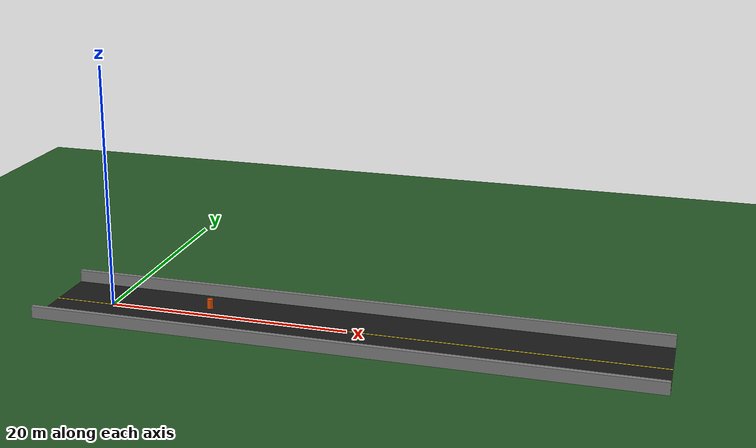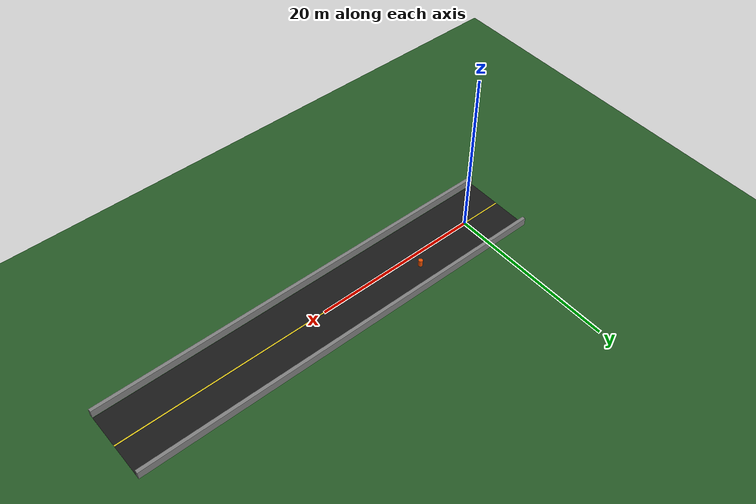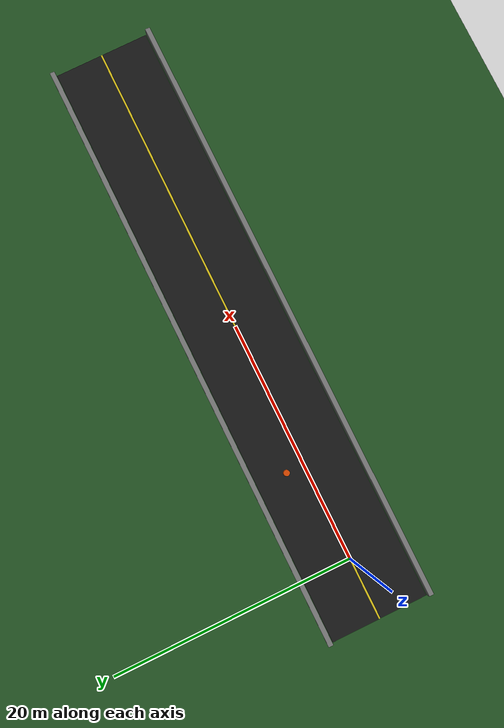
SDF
<?xml version="1.0" ?>
<sdf version="1.9">
  <world name="car_world">

    <!-- Only Core System Plugins -->
    <plugin filename="gz-sim-physics-system" name="gz::sim::systems::Physics"/>
    <plugin filename="gz-sim-user-commands-system" name="gz::sim::systems::UserCommands"/>
    <plugin filename="gz-sim-scene-broadcaster-system" name="gz::sim::systems::SceneBroadcaster"/>

    <physics name="1ms" type="ode">
      <max_step_size>0.001</max_step_size>
      <real_time_factor>1.0</real_time_factor>
      <real_time_update_rate>1000</real_time_update_rate>
    </physics>

    <gravity>0 0 -9.81</gravity>

    <light name="sun" type="directional">
      <cast_shadows>true</cast_shadows>
      <pose>0 0 15 0 0 0</pose>
      <diffuse>0.9 0.9 0.9 1</diffuse>
      <specular>0.2 0.2 0.2 1</specular>
      <direction>-0.5 0.1 -0.9</direction>
    </light>

    <!-- Ground -->
    <model name="ground_grass">
      <static>true</static>
      <link name="link">
        <collision name="collision">
          <geometry><plane><normal>0 0 1</normal><size>100 100</size></plane></geometry>
        </collision>
        <visual name="visual">
          <geometry><plane><normal>0 0 1</normal><size>100 100</size></plane></geometry>
          <material>
            <ambient>0.15 0.35 0.15 1</ambient>
            <diffuse>0.15 0.35 0.15 1</diffuse>
          </material>
        </visual>
      </link>
    </model>

    <!-- Asphalt Road -->
    <model name="asphalt_road">
      <static>true</static>
      <pose>20.0 0 0.005 0 0 0</pose>
      <link name="link">
        <collision name="collision">
          <geometry><box><size>50.0 8.0 0.01</size></box></geometry>
        </collision>
        <visual name="visual">
          <geometry><box><size>50.0 8.0 0.01</size></box></geometry>
          <material>
            <ambient>0.1 0.1 0.1 1</ambient>
            <diffuse>0.1 0.1 0.1 1</diffuse>
          </material>
        </visual>
      </link>
    </model>

    <!-- Yellow Center Line -->
    <model name="road_line_center">
      <static>true</static>
      <pose>20.0 0 0.01 0 0 0</pose>
      <link name="link">
        <visual name="visual">
          <geometry><box><size>50.0 0.15 0.01</size></box></geometry>
          <material>
            <ambient>0.9 0.8 0.1 1</ambient>
            <diffuse>0.9 0.8 0.1 1</diffuse>
          </material>
        </visual>
      </link>
    </model>

    <!-- Barriers -->
    <model name="barrier_left">
      <static>true</static>
      <pose>20.0 4.25 0.5 0 0 0</pose>
      <link name="link">
        <collision name="collision">
          <geometry><box><size>50.0 0.4 1.0</size></box></geometry>
        </collision>
        <visual name="visual">
          <geometry><box><size>50.0 0.4 1.0</size></box></geometry>
          <material>
            <ambient>0.5 0.5 0.5 1</ambient>
            <diffuse>0.5 0.5 0.5 1</diffuse>
          </material>
        </visual>
      </link>
    </model>

    <model name="barrier_right">
      <static>true</static>
      <pose>20.0 -4.25 0.5 0 0 0</pose>
      <link name="link">
        <collision name="collision">
          <geometry><box><size>50.0 0.4 1.0</size></box></geometry>
        </collision>
        <visual name="visual">
          <geometry><box><size>50.0 0.4 1.0</size></box></geometry>
          <material>
            <ambient>0.5 0.5 0.5 1</ambient>
            <diffuse>0.5 0.5 0.5 1</diffuse>
          </material>
        </visual>
      </link>
    </model>

    <!-- Obstacles -->
    <model name="traffic_cone_1">
      <static>true</static>
      <pose>8.0 1.5 0.4 0 0 0</pose>
      <link name="link">
        <collision name="collision">
          <geometry><cylinder><radius>0.25</radius><length>0.8</length></cylinder></geometry>
        </collision>
        <visual name="visual">
          <geometry><cylinder><radius>0.25</radius><length>0.8</length></cylinder></geometry>
          <material>
            <ambient>0.9 0.3 0.0 1</ambient>
            <diffuse>0.9 0.3 0.0 1</diffuse>
          </material>
        </visual>
      </link>
    </model>

  </world>
</sdf>
